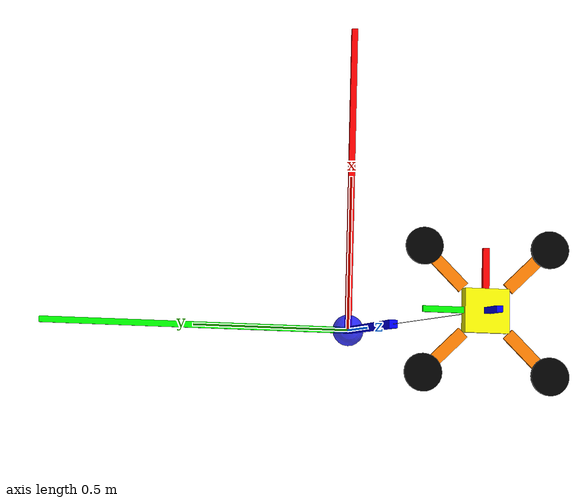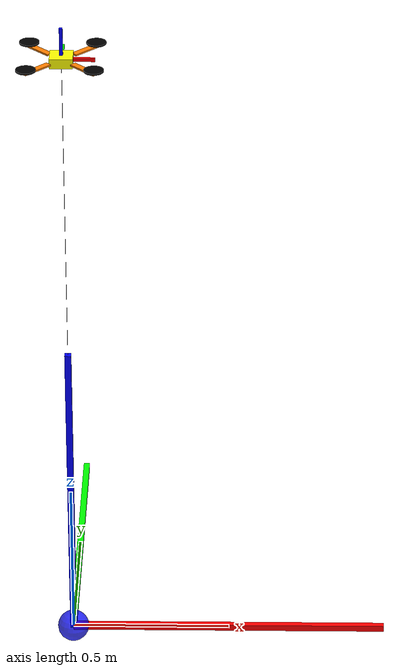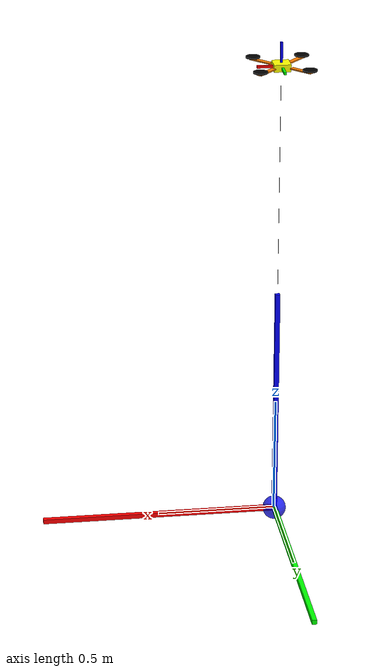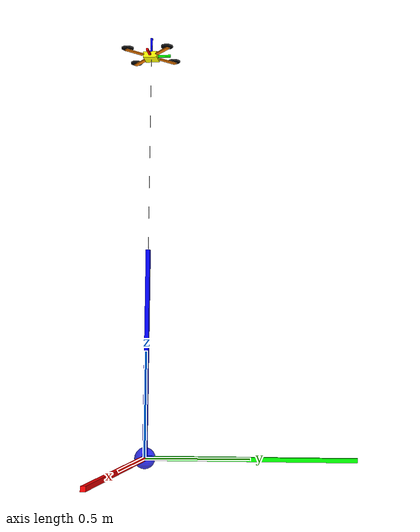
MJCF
<mujoco model="quadrotor_payload">
  <compiler angle="radian" autolimits="true"/>
  <option timestep="0.01" gravity="0 0 -9.81" integrator="implicitfast" jacobian="sparse">
    <flag energy="enable" contact="enable"/>
  </option>

  <worldbody>
    <light pos="0 0 1.5" dir="0 0 -1" directional="true"/>
    <site name="world_X" type="box" pos="0.5 0.0 0.0" size="0.5 0.01 0.01"
      quat="1.0 0.0 0.0 0.0" rgba="1 0 0 1"/>
    <site name="world_Y" type="box" pos="0.0 0.5 0.0" size="0.5 0.01 0.01"
      quat="0.707 0.0 0.0 0.707" rgba="0 1 0 1"/>
    <site name="world_Z" type="box" pos="0.0 0.0 0.5" size="0.5 0.01 0.01"
      quat="-0.707 0.0 0.707 0.0" rgba="0 0 1 1"/>

    <body name="drone_0" pos="0 0 2" euler="0 0 0">
      <joint name="drone_0" type="free" damping="0.001"/>

      <geom name="core" type="box" pos="0 0 0" size="0.035 0.035 0.015"
        rgba="1 1 0 1" mass="0.84"/>
      <geom name="a00" type="box" pos="0.071 0.071 0.0" size="0.05 0.01 0.0025"
        quat="0.924 0.0 0.0 0.383" rgba="1.0 0.5 0.0 1.0" mass="0.025"/>
      <geom name="a10" type="box" pos="0.071 -0.071 0.0" size="0.05 0.01 0.0025"
        quat="0.383 0.0 0.0 0.924" rgba="1.0 0.5 0.0 1.0" mass="0.025"/>
      <geom name="a20" type="box" pos="-0.071 -0.071 0.0" size="0.05 0.01 0.0025"
        quat="-0.383 0.0 0.0 0.924" rgba="1.0 0.5 0.0 1.0" mass="0.025"/>
      <geom name="a30" type="box" pos="-0.071 0.071 0.0" size="0.05 0.01 0.0025"
        quat="0.924 0.0 0.0 -0.383" rgba="1.0 0.5 0.0 1.0" mass="0.025"/>

      <geom name="thruster00" type="cylinder" pos="0.1 0.1 0.01" size="0.03 0.0025"
        rgba="0.0 0.0 0.0 1.0" mass="0.015"/>
      <geom name="thruster10" type="cylinder" pos="0.1 -0.1 0.01" size="0.03 0.0025"
        rgba="0.0 0.0 0.0 1.0" mass="0.015"/>
      <geom name="thruster20" type="cylinder" pos="-0.1 -0.1 0.01" size="0.03 0.0025"
        rgba="0.0 0.0 0.0 1.0" mass="0.015"/>
      <geom name="thruster30" type="cylinder" pos="-0.1 0.1 0.01" size="0.03 0.0025"
        rgba="0.0 0.0 0.0 1.0" mass="0.015"/>

      <site name="qcX" type="box" pos="0.05 0.0 0.0" size="0.05 0.005 0.005"
        quat="1.0 0.0 0.0 0.0" rgba="1 0 0 1"/>
      <site name="qcY" type="box" pos="0.0 0.05 0.0" size="0.05 0.005 0.005"
        quat="0.707 0.0 0.0 0.707" rgba="0 1 0 1"/>
      <site name="qcZ" type="box" pos="0.0 0.0 0.05" size="0.05 0.005 0.005"
        quat="-0.707 0.0 0.707 0.0" rgba="0 0 1 1"/>

      <site name="thrust" type="sphere" pos="0 0 0" size="0.01" rgba="0 1 1 1"/>
      <site name="rateX" type="sphere" pos="0 0 0" size="0.01" rgba="0 1 1 1"/>
      <site name="rateY" type="sphere" pos="0 0 0" size="0.01" rgba="0 1 1 1"/>
      <site name="rateZ" type="sphere" pos="0 0 0" size="0.01" rgba="0 1 1 1"/>
      <site name="imu" pos="0 0 0"/>
      <site name="payload_point_drone_0" pos="0 0 0"/>
    </body>

    <body name="payload" pos="0 0 0">
      <joint name="payload_x" type="slide" axis="1 0 0" damping="0.001"/>
      <joint name="payload_y" type="slide" axis="0 1 0" damping="0.001"/>
      <joint name="payload_z" type="slide" axis="0 0 1" damping="0.001"/>
      <geom name="payload_geom" type="sphere" size="0.05" rgba="0 0 1 0.8" mass="0.5"
        friction="1.0 0.005 0.0001"/>
      <site name="payload_point" pos="0 0 0.05"/>
    </body>
  </worldbody>

  <actuator>
    <motor name="body_thrust" site="thrust" gear="0 0 1 0 0 0" ctrlrange="0 60"/>
    <motor name="x_moment" site="rateX" gear="0 0 0 1 0 0" ctrlrange="-0.3 0.3"/>
    <motor name="y_moment" site="rateY" gear="0 0 0 0 1 0" ctrlrange="-0.3 0.3"/>
    <motor name="z_moment" site="rateZ" gear="0 0 0 0 0 1" ctrlrange="-0.3 0.3"/>
  </actuator>

  <tendon>
    <spatial name="rope0" limited="true" range="0 1" width=".0005">
      <site site="payload_point_drone_0"/>
      <site site="payload_point"/>
    </spatial>
  </tendon>
</mujoco>
